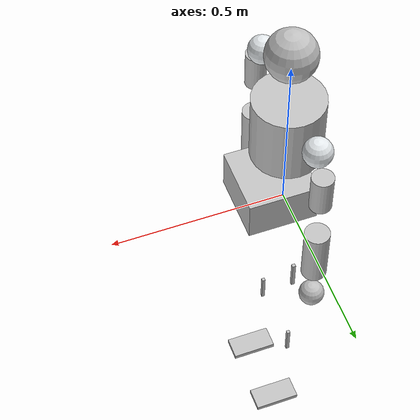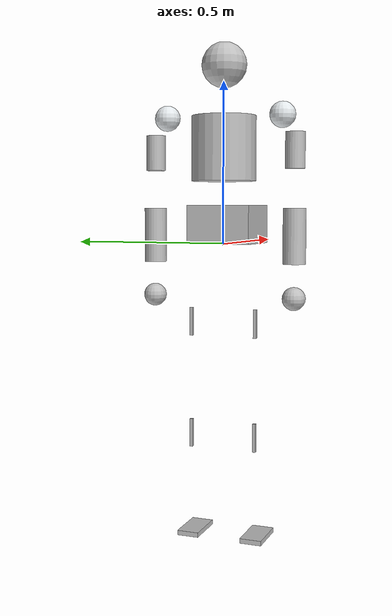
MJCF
<mujoco model="pai_12dof_v2_0312">
  <compiler angle="radian" meshdir="../meshes/"/>
  <default>
    <joint damping="0" armature="0.1"/>
  </default>
  <asset>
    <mesh name="base_link" file="base_link.STL"/>
    <mesh name="r_hip_yaw_link" file="r_hip_yaw_link.STL"/>
    <mesh name="r_hip_roll_link" file="r_hip_roll_link.STL"/>
    <mesh name="r_thigh_link" file="r_thigh_link.STL"/>
    <mesh name="r_calf_link" file="r_calf_link.STL"/>
    <mesh name="r_ankle_pitch_link" file="r_ankle_pitch_link.STL"/>
    <mesh name="r_ankle_roll_link" file="r_ankle_roll_link.STL"/>
    <mesh name="l_hip_yaw_link" file="l_hip_yaw_link.STL"/>
    <mesh name="l_hip_roll_link" file="l_hip_roll_link.STL"/>
    <mesh name="l_thigh_link" file="l_thigh_link.STL"/>
    <mesh name="l_calf_link" file="l_calf_link.STL"/>
    <mesh name="l_ankle_pitch_link" file="l_ankle_pitch_link.STL"/>
    <mesh name="l_ankle_roll_link" file="l_ankle_roll_link.STL"/>
  </asset>
  <worldbody>
    <body name="base_link">
      <inertial pos="-0.0485352 -0.000893041 -0.0328649" quat="0.358994 0.355193 -0.612215 0.608403" mass="4.9869" diaginertia="0.0502276 0.0443441 0.0167764"/>
      <freejoint/>
      <site name="imu" pos="0 0 0"/>
      <geom size="0.1 0.1 0.06" pos="0.04 0 0.06" type="box" rgba="0.75294 0.75294 0.75294 1"/>
      <body name="leg_l2_link" pos="-0.048 0.105 -0.0575">
        <inertial pos="-0.0578492 0 -0.0416749" quat="0.638398 0.304052 0.304052 0.638398" mass="0.388765" diaginertia="0.0004324 0.000431481 0.000133919"/>
        <joint name="l_hip_roll" pos="0 0 0" axis="1 0 0" range="-0.09 0.79"/>
        <geom size="5e-05 5e-05 5e-05" type="box" rgba="0.75294 0.75294 0.75294 1"/>
        <body name="leg_l1_link" pos="0.048 0 -0.0305">
          <inertial pos="0.0373373 -0.0004323 0.0004287" quat="0.521666 0.520835 -0.47816 0.47745" mass="0.74952" diaginertia="0.00144387 0.00138143 0.000338398"/>
          <joint name="l_hip_yaw" pos="0 0 0" axis="0 0 1" range="-0.7 0.7"/>
          <geom size="5e-05 5e-05 5e-05" type="box" rgba="0.75294 0.75294 0.75294 1"/>
          <body name="leg_l3_link" pos="0 0 -0.11">
            <inertial pos="0.004364 0.0013366 -0.046554" quat="0.700571 -0.0412528 -0.0246027 0.711964" mass="0.14436" diaginertia="0.000442407 0.000439927 4.54667e-05"/>
            <joint name="l_hip_pitch" pos="0 0 0" axis="0 1 0" range="-1.75 0.7"/>
            <geom size="0.005 0.005 0.045" pos="0 0 -0.05" type="box" rgba="0.75294 0.75294 0.75294 1"/>
            <body name="leg_l4_link" pos="0 0 -0.359995">
              <inertial pos="0.0035389 0 -0.07142" quat="0.707528 0.00267035 0.0054126 0.70666" mass="0.768122" diaginertia="0.00106741 0.00103721 0.00021498"/>
              <joint name="l_knee_pitch" pos="0 0 0" axis="0 1 0" range="-0.09 1.92"/>
              <geom size="0.005 0.005 0.045" pos="0 0 -0.05" type="box" rgba="0.75294 0.75294 0.75294 1"/>
              <body name="leg_l5_link" pos="0 0 -0.34">
                <inertial pos="0 0 0" quat="0.5 0.5 0.5 0.5" mass="0.0088647" diaginertia="1e-06 1e-06 2e-07"/>
                <joint name="l_ankle_pitch" pos="0 0 0" axis="0 1 0" range="-1.05 0.52"/>
                <body name="l_ankle_roll_link">
                  <inertial pos="0.0246916 0 -0.017806" quat="0 0.724768 0 0.688993" mass="0.192893" diaginertia="0.000479551 0.000430688 8.01379e-05"/>
                  <joint name="l_ankle_roll" pos="0 0 0" axis="1 0 0" range="-0.44 0.44"/>
                  <geom size="0.07 0.035 0.0075" pos="0.035 0 -0.035" type="box" rgba="0.75294 0.75294 0.75294 1"/>
                </body>
              </body>
            </body>
          </body>
        </body>
      </body>
      <body name="leg_r2_link" pos="-0.048 -0.105 -0.0575">
        <inertial pos="-0.0578492 0 -0.0416749" quat="0.638398 0.304052 0.304052 0.638398" mass="0.388765" diaginertia="0.0004324 0.000431481 0.000133919"/>
        <joint name="r_hip_roll" pos="0 0 0" axis="1 0 0" range="-0.79 0.09"/>
        <geom size="5e-05 5e-05 5e-05" type="box" rgba="0.75294 0.75294 0.75294 1"/>
        <body name="leg_r1_link" pos="0.048 0 -0.0305">
          <inertial pos="0.0373373 0.0004272 0.0004287" quat="0.522079 0.520414 -0.478425 0.477192" mass="0.749522" diaginertia="0.00144387 0.00138144 0.000338391"/>
          <joint name="r_hip_yaw" pos="0 0 0" axis="0 0 1" range="-0.7 0.7"/>
          <geom size="5e-05 5e-05 5e-05" type="box" rgba="0.75294 0.75294 0.75294 1"/>
          <body name="leg_r3_link" pos="0 0 -0.11">
            <inertial pos="0.004364 -0.0013366 -0.0465535" quat="0.711964 -0.0246027 -0.0412528 0.700571" mass="0.14436" diaginertia="0.000442407 0.000439927 4.54667e-05"/>
            <joint name="r_hip_pitch" pos="0 0 0" axis="0 1 0" range="-1.75 0.7"/>
            <geom size="0.005 0.005 0.045" pos="0 0 -0.05" type="box" rgba="0.75294 0.75294 0.75294 1"/>
            <body name="leg_r4_link" pos="0 0 -0.359995">
              <inertial pos="0.0035389 0 -0.0714471" quat="0.707528 0.00267035 0.0054126 0.70666" mass="0.768122" diaginertia="0.00106741 0.00103721 0.00021498"/>
              <joint name="r_knee_pitch" pos="0 0 0" axis="0 1 0" range="-0.09 1.92"/>
              <geom size="0.005 0.005 0.045" pos="0 0 -0.05" type="box" rgba="0.75294 0.75294 0.75294 1"/>
              <body name="leg_r5_link" pos="0 0 -0.34">
                <inertial pos="0 0 0" quat="0.5 0.5 0.5 0.5" mass="0.0088647" diaginertia="1e-06 1e-06 2e-07"/>
                <joint name="r_ankle_pitch" pos="0 0 0" axis="0 1 0" range="-1.05 0.52"/>
                <body name="r_ankle_roll_link">
                  <inertial pos="0.0246916 0 -0.017806" quat="0 0.724768 0 0.688993" mass="0.192893" diaginertia="0.000479551 0.000430688 8.01379e-05"/>
                  <joint name="r_ankle_roll" pos="0 0 0" axis="1 0 0" range="-1.2 1.2"/>
                  <geom size="0.07 0.035 0.0075" pos="0.035 0 -0.035" type="box" rgba="0.75294 0.75294 0.75294 1"/>
                </body>
              </body>
            </body>
          </body>
        </body>
      </body>
      <body name="link_waist_yaw" pos="0 0 0.0065">
        <inertial pos="-0.0049526 -0.00090609 0.0262" quat="0.542631 0.529181 -0.457917 0.464576" mass="0.507438" diaginertia="0.00142661 0.00109837 0.000824081"/>

        <body name="link_waist_pitch" pos="0 0 0.057">
          <inertial pos="0.0045612 -0.0044005 0.040369" quat="0.978202 -0.0539856 0.0371241 -0.197049" mass="2.90421" diaginertia="0.00850445 0.00848089 0.00320118"/>

          <body name="link_waist_roll" pos="0 0 0.081">
            <inertial pos="-0.0094995 8.7428e-05 0.16729" quat="0.999359 -0.000385668 -0.0357383 0.00217327" mass="7.54469" diaginertia="0.063061 0.0510142 0.0384047"/>

            <geom size="0.1 0.1" pos="0 0 0.15" type="cylinder" rgba="0.75294 0.75294 0.75294 1"/>
            <body name="l_upper_arm_pitch" pos="0 0.126624 0.219259" quat="0.976296 0.216441 0 0">
              <inertial pos="0.0054188 0.05902 0.00011843" quat="0.719753 0.692726 -0.0305981 -0.0339146" mass="0.78809" diaginertia="0.00077767 0.000679926 0.000492134"/>

              <body name="l_upper_arm_roll" pos="0 0.067 0" quat="0.976296 -0.216441 0 0">
                <inertial pos="0.01986 0.02608 -0.025535" quat="0.893234 0.357735 0.271874 -0.0156034" mass="0.1786" diaginertia="0.00023545 0.000209436 9.26143e-05"/>

                <geom size="0.04" rgba="0.89804 0.91765 0.92941 1"/>
                <body name="l_upper_arm_yaw" pos="0 0.0403814 -0.0572328">
                  <inertial pos="0.00010029 0.0012809 -0.097194" quat="0.999843 0.0176975 -0.000104318 -0.000563119" mass="0.98085" diaginertia="0.00618618 0.00611969 0.000570189"/>

                  <geom size="0.03 0.055" pos="0 0 -0.05" type="cylinder" rgba="0.75294 0.75294 0.75294 1"/>
                  <body name="l_lower_arm_pitch" pos="0 0.00125501 -0.188749">
                    <inertial pos="7.6884e-09 0.020584 -0.020113" quat="0.676835 -0.204682 0.204682 0.676835" mass="0.059535" diaginertia="3.12523e-05 2.796e-05 1.40177e-05"/>

                    <body name="l_hand_yaw" pos="0 0.000299612 -0.0404989">
                      <inertial pos="-0.00048885 0.0013916 -0.08204" quat="0.99956 -0.00194832 -2.05965e-05 0.0296028" mass="1.2684" diaginertia="0.00419493 0.00409086 0.000847261"/>

                      <geom size="0.035 0.085" pos="0 0 -0.08" type="cylinder" rgba="0.75294 0.75294 0.75294 1"/>
                      <body name="l_hand_roll" pos="0 0.001337 -0.20108">
                        <inertial pos="1.566e-08 -0.00043791 -2.922e-06" quat="0.5 0.5 0.5 0.5" mass="0.0054351" diaginertia="3.6e-07 3.6e-07 7e-08"/>

                        <body name="l_hand_pitch">
                          <inertial pos="0.0058876 -0.0010755 -0.082238" quat="0.813153 0.040279 0.00796725 0.580599" mass="0.54891" diaginertia="0.00152687 0.00108682 0.000582753"/>

                          <geom size="0.036" pos="0 0 -0.07" rgba="0.75294 0.75294 0.75294 1"/>
                        </body>
                      </body>
                    </body>
                  </body>
                </body>
              </body>
            </body>
            <body name="r_upper_arm_pitch" pos="0 -0.126624 0.219259" quat="0.976296 -0.21644 0 0">
              <inertial pos="0.0054189 -0.058978 0.0001189" quat="0.688371 0.723998 0.033838 0.0287698" mass="0.78809" diaginertia="0.000777007 0.000679609 0.000492064"/>

              <body name="r_upper_arm_roll" pos="0 -0.067 0" quat="0.976296 0.21644 0 0">
                <inertial pos="0.019868 -0.025881 -0.025684" quat="0.89443 -0.354722 0.271831 0.0165736" mass="0.1786" diaginertia="0.000235434 0.000209404 9.26224e-05"/>

                <geom size="0.04" rgba="0.89804 0.91765 0.92941 1"/>
                <body name="r_upper_arm_yaw" pos="0 -0.04 -0.0575">
                  <inertial pos="-0.00010032 -0.00063501 -0.097127" quat="0.999896 -0.0143971 0.000111836 0.000334005" mass="0.98085" diaginertia="0.0061732 0.00610683 0.00057023"/>

                  <geom size="0.03 0.055" pos="0 0 -0.05" type="cylinder" rgba="0.75294 0.75294 0.75294 1"/>
                  <body name="r_lower_arm_pitch" pos="0 0 -0.18853">
                    <inertial pos="-7.6455e-09 -0.020449 -0.020249" quat="0.676142 0.20696 -0.20696 0.676142" mass="0.059535" diaginertia="3.12637e-05 2.796e-05 1.40163e-05"/>

                    <body name="r_hand_yaw" pos="0 -3.03303e-05 -0.0405">
                      <inertial pos="0.00048881 -0.00084627 -0.082047" quat="0.999548 0.00527184 -7.7624e-05 0.0295879" mass="1.2684" diaginertia="0.00419493 0.00409087 0.000847259"/>

                      <geom size="0.035 0.085" pos="0 0 -0.08" type="cylinder" rgba="0.75294 0.75294 0.75294 1"/>
                      <body name="r_hand_roll" pos="0 0 -0.201084">
                        <inertial pos="-1.552e-08 0.00043792 -1.1275e-08" quat="0.5 0.5 0.5 0.5" mass="0.0054351" diaginertia="3.6e-07 3.6e-07 7e-08"/>

                        <body name="r_hand_pitch">
                          <inertial pos="0.0058875 0.0016218 -0.082229" quat="0.580588 0.0098997 0.0375703 0.81327" mass="0.54891" diaginertia="0.00152691 0.00108681 0.000582768"/>

                          <geom size="0.036" pos="0 0 -0.07" rgba="0.75294 0.75294 0.75294 1"/>
                        </body>
                      </body>
                    </body>
                  </body>
                </body>
              </body>
            </body>
            <body name="link_head_pitch" pos="0.001 -0.000225513 0.305">
              <inertial pos="0.00043792 1.5503e-08 -1.1298e-08" quat="0.707107 0.707107 0 0" mass="0.00543512" diaginertia="3.6e-07 3.6e-07 7e-08"/>

              <geom size="0.07" pos="0 0 0.1" rgba="0.75294 0.75294 0.75294 1"/>
              <body name="link_head_roll">
                <inertial pos="-0.003976 2.2544e-05 0.015347" quat="0.669576 0.669576 0.227306 -0.227306" mass="0.0713171" diaginertia="3.07787e-05 2.49813e-05 2.039e-05"/>

                <body name="link_head_yaw" pos="0 5.373e-05 0.036">
                  <inertial pos="0.02323 0.00026918 0.11024" quat="0.694627 -0.130794 -0.130531 0.695232" mass="1.38984" diaginertia="0.00988205 0.00835953 0.00593029"/>

                </body>
              </body>
            </body>
          </body>
        </body>
      </body>
    </body>
  </worldbody>
  <actuator>
    <!-- User parameter is the maximum no-load motor RPM -->
    <motor name="l_hip_roll" joint="l_hip_roll" ctrlrange="-48 48" user="116"/>
    <motor name="l_hip_yaw" joint="l_hip_yaw" ctrlrange="-66 66" user="160"/>
    <motor name="l_hip_pitch" joint="l_hip_pitch" ctrlrange="-225 225" user="357"/>
    <motor name="l_knee_pitch" joint="l_knee_pitch" ctrlrange="-225 225" user="357"/>
    <motor name="l_ankle_pitch" joint="l_ankle_pitch" ctrlrange="-28 28" user="194"/>
    <motor name="l_ankle_roll" joint="l_ankle_roll" ctrlrange="-30 30" user="194"/>
    <motor name="r_hip_roll" joint="r_hip_roll" ctrlrange="-48 48" user="116"/>
    <motor name="r_hip_yaw" joint="r_hip_yaw" ctrlrange="-66 66" user="160"/>
    <motor name="r_hip_pitch" joint="r_hip_pitch" ctrlrange="-225 225" user="357"/>
    <motor name="r_knee_pitch" joint="r_knee_pitch" ctrlrange="-225 225" user="357"/>
    <motor name="r_ankle_pitch" joint="r_ankle_pitch" ctrlrange="-28 28" user="194"/>
    <motor name="r_ankle_roll" joint="r_ankle_roll" ctrlrange="-30 30" user="194"/>
  </actuator>

  <sensor>
    <accelerometer name="accel" site="imu"/>
    <gyro name="gyro" site="imu"/>
  </sensor>
</mujoco>
